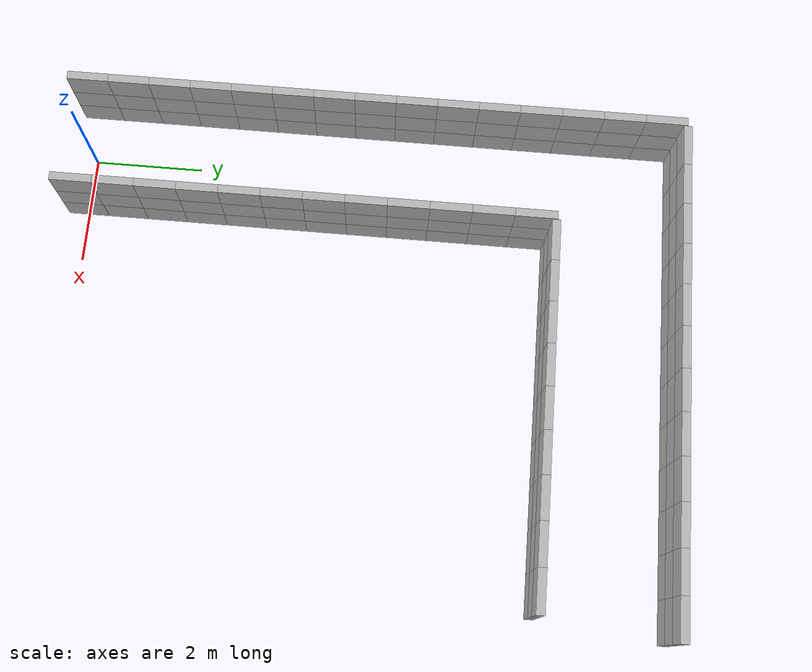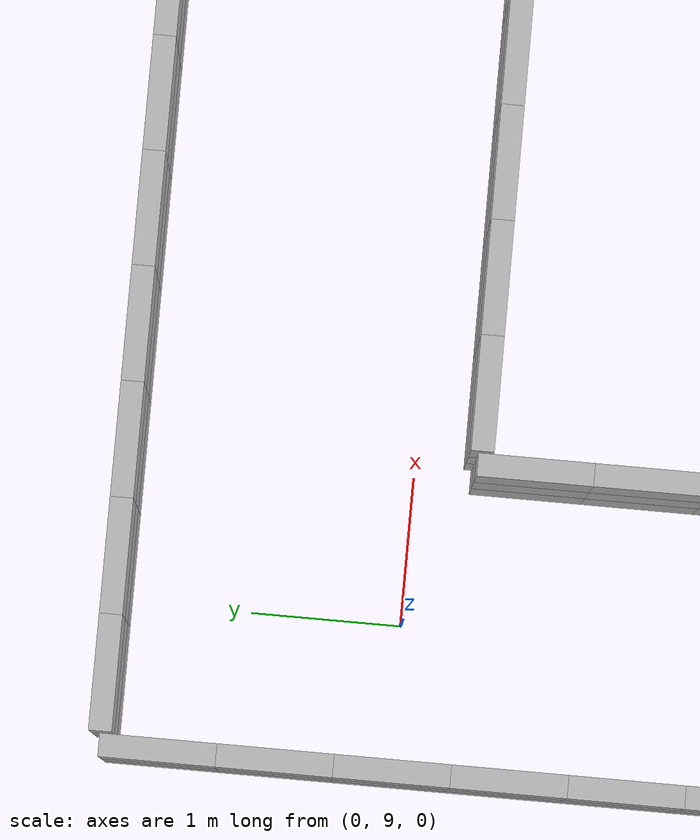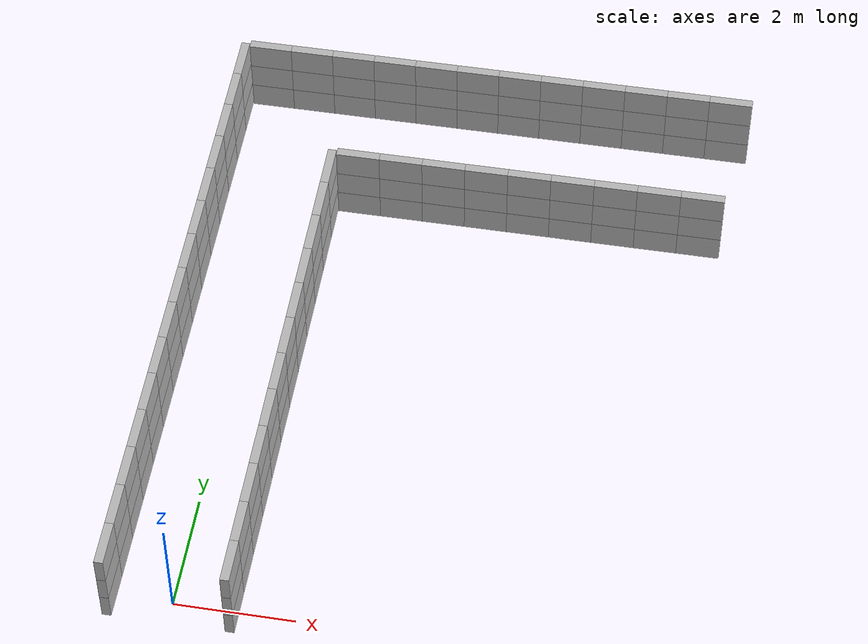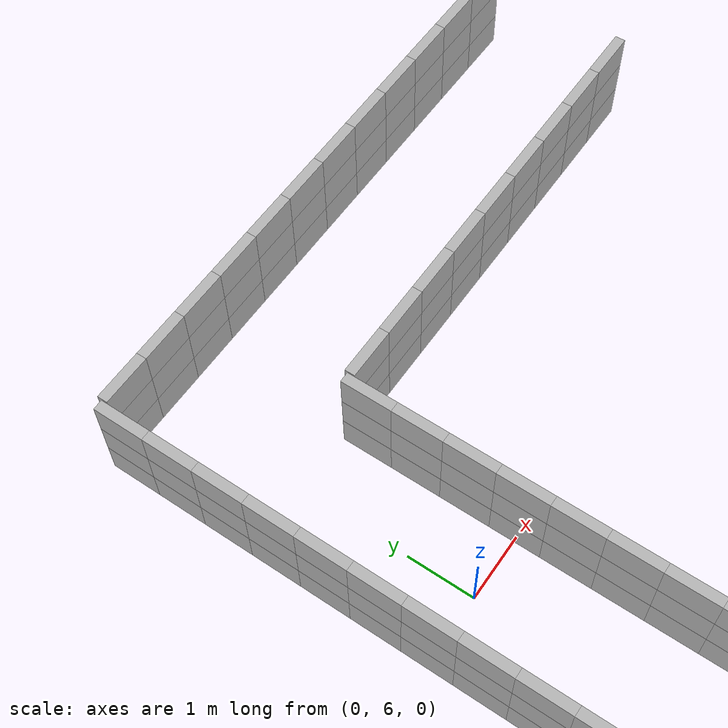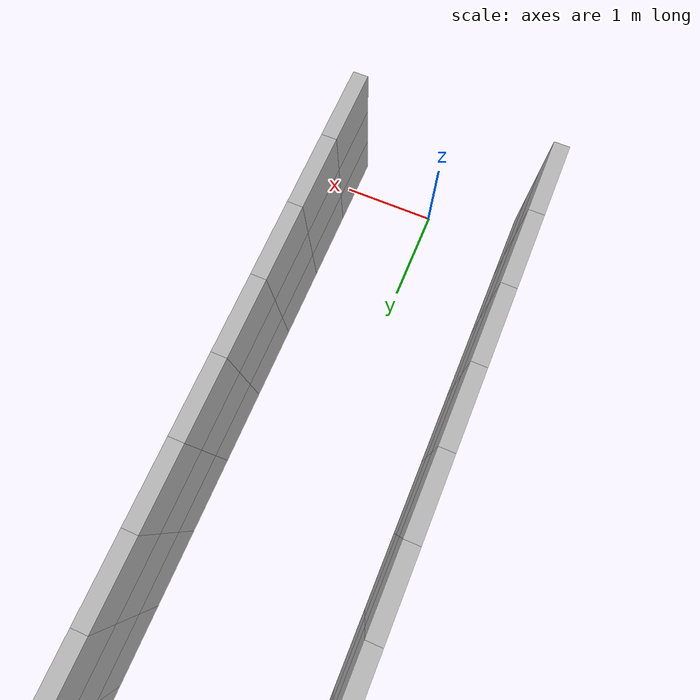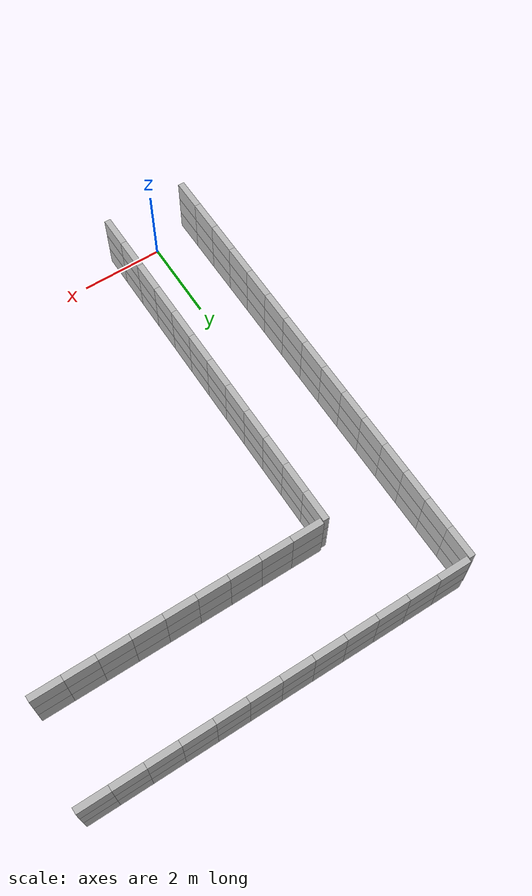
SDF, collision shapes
<sdf version="1.5">
 <model name="boxes_Lcorridor model">
  <static>true</static>
  <link name="link_0">
   <collision name="collision_0">
    <pose>-1 0 1.25 0 0 1.57079633</pose>
    <geometry><box><size>0.75 0.15 0.5</size></box></geometry>
   </collision>
   <visual name="visual_0">
    <pose>-1 0 1.25 0 0 1.57079633</pose>
    <geometry><mesh><uri>model://boxes_Lcorridor/meshes/blue_circle_border.dae</uri></mesh></geometry>
   </visual>
  </link>
  <link name="link_1">
   <collision name="collision_1">
    <pose>-1 0 0.75 0 0 1.57079633</pose>
    <geometry><box><size>0.75 0.15 0.5</size></box></geometry>
   </collision>
   <visual name="visual_1">
    <pose>-1 0 0.75 0 0 1.57079633</pose>
    <geometry><mesh><uri>model://boxes_Lcorridor/meshes/red_circle_border.dae</uri></mesh></geometry>
   </visual>
  </link>
  <link name="link_2">
   <collision name="collision_2">
    <pose>-1 0 0.25 0 0 1.57079633</pose>
    <geometry><box><size>0.75 0.15 0.5</size></box></geometry>
   </collision>
   <visual name="visual_2">
    <pose>-1 0 0.25 0 0 1.57079633</pose>
    <geometry><mesh><uri>model://boxes_Lcorridor/meshes/green_circle_border.dae</uri></mesh></geometry>
   </visual>
  </link>
  <link name="link_3">
   <collision name="collision_3">
    <pose>-1 0.75 0.25 0 0 1.57079633</pose>
    <geometry><box><size>0.75 0.15 0.5</size></box></geometry>
   </collision>
   <visual name="visual_3">
    <pose>-1 0.75 0.25 0 0 1.57079633</pose>
    <geometry><mesh><uri>model://boxes_Lcorridor/meshes/blue_circle_border.dae</uri></mesh></geometry>
   </visual>
  </link>
  <link name="link_4">
   <collision name="collision_4">
    <pose>-1 0.75 1.25 0 0 1.57079633</pose>
    <geometry><box><size>0.75 0.15 0.5</size></box></geometry>
   </collision>
   <visual name="visual_4">
    <pose>-1 0.75 1.25 0 0 1.57079633</pose>
    <geometry><mesh><uri>model://boxes_Lcorridor/meshes/red_circle_border.dae</uri></mesh></geometry>
   </visual>
  </link>
  <link name="link_5">
   <collision name="collision_5">
    <pose>-1 0.75 0.75 0 0 1.57079633</pose>
    <geometry><box><size>0.75 0.15 0.5</size></box></geometry>
   </collision>
   <visual name="visual_5">
    <pose>-1 0.75 0.75 0 0 1.57079633</pose>
    <geometry><mesh><uri>model://boxes_Lcorridor/meshes/green_circle_border.dae</uri></mesh></geometry>
   </visual>
  </link>
  <link name="link_6">
   <collision name="collision_6">
    <pose>-1 1.5 0.75 0 0 1.57079633</pose>
    <geometry><box><size>0.75 0.15 0.5</size></box></geometry>
   </collision>
   <visual name="visual_6">
    <pose>-1 1.5 0.75 0 0 1.57079633</pose>
    <geometry><mesh><uri>model://boxes_Lcorridor/meshes/blue_circle_border.dae</uri></mesh></geometry>
   </visual>
  </link>
  <link name="link_7">
   <collision name="collision_7">
    <pose>-1 1.5 0.25 0 0 1.57079633</pose>
    <geometry><box><size>0.75 0.15 0.5</size></box></geometry>
   </collision>
   <visual name="visual_7">
    <pose>-1 1.5 0.25 0 0 1.57079633</pose>
    <geometry><mesh><uri>model://boxes_Lcorridor/meshes/red_circle_border.dae</uri></mesh></geometry>
   </visual>
  </link>
  <link name="link_8">
   <collision name="collision_8">
    <pose>-1 1.5 1.25 0 0 1.57079633</pose>
    <geometry><box><size>0.75 0.15 0.5</size></box></geometry>
   </collision>
   <visual name="visual_8">
    <pose>-1 1.5 1.25 0 0 1.57079633</pose>
    <geometry><mesh><uri>model://boxes_Lcorridor/meshes/green_circle_border.dae</uri></mesh></geometry>
   </visual>
  </link>
  <link name="link_9">
   <collision name="collision_9">
    <pose>-1 2.25 1.25 0 0 1.57079633</pose>
    <geometry><box><size>0.75 0.15 0.5</size></box></geometry>
   </collision>
   <visual name="visual_9">
    <pose>-1 2.25 1.25 0 0 1.57079633</pose>
    <geometry><mesh><uri>model://boxes_Lcorridor/meshes/blue_circle_border.dae</uri></mesh></geometry>
   </visual>
  </link>
  <link name="link_10">
   <collision name="collision_10">
    <pose>-1 2.25 0.75 0 0 1.57079633</pose>
    <geometry><box><size>0.75 0.15 0.5</size></box></geometry>
   </collision>
   <visual name="visual_10">
    <pose>-1 2.25 0.75 0 0 1.57079633</pose>
    <geometry><mesh><uri>model://boxes_Lcorridor/meshes/red_circle_border.dae</uri></mesh></geometry>
   </visual>
  </link>
  <link name="link_11">
   <collision name="collision_11">
    <pose>-1 2.25 0.25 0 0 1.57079633</pose>
    <geometry><box><size>0.75 0.15 0.5</size></box></geometry>
   </collision>
   <visual name="visual_11">
    <pose>-1 2.25 0.25 0 0 1.57079633</pose>
    <geometry><mesh><uri>model://boxes_Lcorridor/meshes/green_circle_border.dae</uri></mesh></geometry>
   </visual>
  </link>
  <link name="link_12">
   <collision name="collision_12">
    <pose>-1 3 0.25 0 0 1.57079633</pose>
    <geometry><box><size>0.75 0.15 0.5</size></box></geometry>
   </collision>
   <visual name="visual_12">
    <pose>-1 3 0.25 0 0 1.57079633</pose>
    <geometry><mesh><uri>model://boxes_Lcorridor/meshes/blue_circle_border.dae</uri></mesh></geometry>
   </visual>
  </link>
  <link name="link_13">
   <collision name="collision_13">
    <pose>-1 3 1.25 0 0 1.57079633</pose>
    <geometry><box><size>0.75 0.15 0.5</size></box></geometry>
   </collision>
   <visual name="visual_13">
    <pose>-1 3 1.25 0 0 1.57079633</pose>
    <geometry><mesh><uri>model://boxes_Lcorridor/meshes/red_circle_border.dae</uri></mesh></geometry>
   </visual>
  </link>
  <link name="link_14">
   <collision name="collision_14">
    <pose>-1 3 0.75 0 0 1.57079633</pose>
    <geometry><box><size>0.75 0.15 0.5</size></box></geometry>
   </collision>
   <visual name="visual_14">
    <pose>-1 3 0.75 0 0 1.57079633</pose>
    <geometry><mesh><uri>model://boxes_Lcorridor/meshes/green_circle_border.dae</uri></mesh></geometry>
   </visual>
  </link>
  <link name="link_15">
   <collision name="collision_15">
    <pose>-1 3.75 0.75 0 0 1.57079633</pose>
    <geometry><box><size>0.75 0.15 0.5</size></box></geometry>
   </collision>
   <visual name="visual_15">
    <pose>-1 3.75 0.75 0 0 1.57079633</pose>
    <geometry><mesh><uri>model://boxes_Lcorridor/meshes/blue_circle_border.dae</uri></mesh></geometry>
   </visual>
  </link>
  <link name="link_16">
   <collision name="collision_16">
    <pose>-1 3.75 0.25 0 0 1.57079633</pose>
    <geometry><box><size>0.75 0.15 0.5</size></box></geometry>
   </collision>
   <visual name="visual_16">
    <pose>-1 3.75 0.25 0 0 1.57079633</pose>
    <geometry><mesh><uri>model://boxes_Lcorridor/meshes/red_circle_border.dae</uri></mesh></geometry>
   </visual>
  </link>
  <link name="link_17">
   <collision name="collision_17">
    <pose>-1 3.75 1.25 0 0 1.57079633</pose>
    <geometry><box><size>0.75 0.15 0.5</size></box></geometry>
   </collision>
   <visual name="visual_17">
    <pose>-1 3.75 1.25 0 0 1.57079633</pose>
    <geometry><mesh><uri>model://boxes_Lcorridor/meshes/green_circle_border.dae</uri></mesh></geometry>
   </visual>
  </link>
  <link name="link_18">
   <collision name="collision_18">
    <pose>-1 4.5 1.25 0 0 1.57079633</pose>
    <geometry><box><size>0.75 0.15 0.5</size></box></geometry>
   </collision>
   <visual name="visual_18">
    <pose>-1 4.5 1.25 0 0 1.57079633</pose>
    <geometry><mesh><uri>model://boxes_Lcorridor/meshes/blue_circle_border.dae</uri></mesh></geometry>
   </visual>
  </link>
  <link name="link_19">
   <collision name="collision_19">
    <pose>-1 4.5 0.75 0 0 1.57079633</pose>
    <geometry><box><size>0.75 0.15 0.5</size></box></geometry>
   </collision>
   <visual name="visual_19">
    <pose>-1 4.5 0.75 0 0 1.57079633</pose>
    <geometry><mesh><uri>model://boxes_Lcorridor/meshes/red_circle_border.dae</uri></mesh></geometry>
   </visual>
  </link>
  <link name="link_20">
   <collision name="collision_20">
    <pose>-1 4.5 0.25 0 0 1.57079633</pose>
    <geometry><box><size>0.75 0.15 0.5</size></box></geometry>
   </collision>
   <visual name="visual_20">
    <pose>-1 4.5 0.25 0 0 1.57079633</pose>
    <geometry><mesh><uri>model://boxes_Lcorridor/meshes/green_circle_border.dae</uri></mesh></geometry>
   </visual>
  </link>
  <link name="link_21">
   <collision name="collision_21">
    <pose>-1 5.25 0.25 0 0 1.57079633</pose>
    <geometry><box><size>0.75 0.15 0.5</size></box></geometry>
   </collision>
   <visual name="visual_21">
    <pose>-1 5.25 0.25 0 0 1.57079633</pose>
    <geometry><mesh><uri>model://boxes_Lcorridor/meshes/blue_circle_border.dae</uri></mesh></geometry>
   </visual>
  </link>
  <link name="link_22">
   <collision name="collision_22">
    <pose>-1 5.25 1.25 0 0 1.57079633</pose>
    <geometry><box><size>0.75 0.15 0.5</size></box></geometry>
   </collision>
   <visual name="visual_22">
    <pose>-1 5.25 1.25 0 0 1.57079633</pose>
    <geometry><mesh><uri>model://boxes_Lcorridor/meshes/red_circle_border.dae</uri></mesh></geometry>
   </visual>
  </link>
  <link name="link_23">
   <collision name="collision_23">
    <pose>-1 5.25 0.75 0 0 1.57079633</pose>
    <geometry><box><size>0.75 0.15 0.5</size></box></geometry>
   </collision>
   <visual name="visual_23">
    <pose>-1 5.25 0.75 0 0 1.57079633</pose>
    <geometry><mesh><uri>model://boxes_Lcorridor/meshes/green_circle_border.dae</uri></mesh></geometry>
   </visual>
  </link>
  <link name="link_24">
   <collision name="collision_24">
    <pose>-1 6 0.75 0 0 1.57079633</pose>
    <geometry><box><size>0.75 0.15 0.5</size></box></geometry>
   </collision>
   <visual name="visual_24">
    <pose>-1 6 0.75 0 0 1.57079633</pose>
    <geometry><mesh><uri>model://boxes_Lcorridor/meshes/blue_circle_border.dae</uri></mesh></geometry>
   </visual>
  </link>
  <link name="link_25">
   <collision name="collision_25">
    <pose>-1 6 0.25 0 0 1.57079633</pose>
    <geometry><box><size>0.75 0.15 0.5</size></box></geometry>
   </collision>
   <visual name="visual_25">
    <pose>-1 6 0.25 0 0 1.57079633</pose>
    <geometry><mesh><uri>model://boxes_Lcorridor/meshes/red_circle_border.dae</uri></mesh></geometry>
   </visual>
  </link>
  <link name="link_26">
   <collision name="collision_26">
    <pose>-1 6 1.25 0 0 1.57079633</pose>
    <geometry><box><size>0.75 0.15 0.5</size></box></geometry>
   </collision>
   <visual name="visual_26">
    <pose>-1 6 1.25 0 0 1.57079633</pose>
    <geometry><mesh><uri>model://boxes_Lcorridor/meshes/green_circle_border.dae</uri></mesh></geometry>
   </visual>
  </link>
  <link name="link_27">
   <collision name="collision_27">
    <pose>-1 6.75 1.25 0 0 1.57079633</pose>
    <geometry><box><size>0.75 0.15 0.5</size></box></geometry>
   </collision>
   <visual name="visual_27">
    <pose>-1 6.75 1.25 0 0 1.57079633</pose>
    <geometry><mesh><uri>model://boxes_Lcorridor/meshes/blue_circle_border.dae</uri></mesh></geometry>
   </visual>
  </link>
  <link name="link_28">
   <collision name="collision_28">
    <pose>-1 6.75 0.75 0 0 1.57079633</pose>
    <geometry><box><size>0.75 0.15 0.5</size></box></geometry>
   </collision>
   <visual name="visual_28">
    <pose>-1 6.75 0.75 0 0 1.57079633</pose>
    <geometry><mesh><uri>model://boxes_Lcorridor/meshes/red_circle_border.dae</uri></mesh></geometry>
   </visual>
  </link>
  <link name="link_29">
   <collision name="collision_29">
    <pose>-1 6.75 0.25 0 0 1.57079633</pose>
    <geometry><box><size>0.75 0.15 0.5</size></box></geometry>
   </collision>
   <visual name="visual_29">
    <pose>-1 6.75 0.25 0 0 1.57079633</pose>
    <geometry><mesh><uri>model://boxes_Lcorridor/meshes/green_circle_border.dae</uri></mesh></geometry>
   </visual>
  </link>
  <link name="link_30">
   <collision name="collision_30">
    <pose>-1 7.5 0.25 0 0 1.57079633</pose>
    <geometry><box><size>0.75 0.15 0.5</size></box></geometry>
   </collision>
   <visual name="visual_30">
    <pose>-1 7.5 0.25 0 0 1.57079633</pose>
    <geometry><mesh><uri>model://boxes_Lcorridor/meshes/blue_circle_border.dae</uri></mesh></geometry>
   </visual>
  </link>
  <link name="link_31">
   <collision name="collision_31">
    <pose>-1 7.5 1.25 0 0 1.57079633</pose>
    <geometry><box><size>0.75 0.15 0.5</size></box></geometry>
   </collision>
   <visual name="visual_31">
    <pose>-1 7.5 1.25 0 0 1.57079633</pose>
    <geometry><mesh><uri>model://boxes_Lcorridor/meshes/red_circle_border.dae</uri></mesh></geometry>
   </visual>
  </link>
  <link name="link_32">
   <collision name="collision_32">
    <pose>-1 7.5 0.75 0 0 1.57079633</pose>
    <geometry><box><size>0.75 0.15 0.5</size></box></geometry>
   </collision>
   <visual name="visual_32">
    <pose>-1 7.5 0.75 0 0 1.57079633</pose>
    <geometry><mesh><uri>model://boxes_Lcorridor/meshes/green_circle_border.dae</uri></mesh></geometry>
   </visual>
  </link>
  <link name="link_33">
   <collision name="collision_33">
    <pose>-1 8.25 0.75 0 0 1.57079633</pose>
    <geometry><box><size>0.75 0.15 0.5</size></box></geometry>
   </collision>
   <visual name="visual_33">
    <pose>-1 8.25 0.75 0 0 1.57079633</pose>
    <geometry><mesh><uri>model://boxes_Lcorridor/meshes/blue_circle_border.dae</uri></mesh></geometry>
   </visual>
  </link>
  <link name="link_34">
   <collision name="collision_34">
    <pose>-1 8.25 0.25 0 0 1.57079633</pose>
    <geometry><box><size>0.75 0.15 0.5</size></box></geometry>
   </collision>
   <visual name="visual_34">
    <pose>-1 8.25 0.25 0 0 1.57079633</pose>
    <geometry><mesh><uri>model://boxes_Lcorridor/meshes/red_circle_border.dae</uri></mesh></geometry>
   </visual>
  </link>
  <link name="link_35">
   <collision name="collision_35">
    <pose>-1 8.25 1.25 0 0 1.57079633</pose>
    <geometry><box><size>0.75 0.15 0.5</size></box></geometry>
   </collision>
   <visual name="visual_35">
    <pose>-1 8.25 1.25 0 0 1.57079633</pose>
    <geometry><mesh><uri>model://boxes_Lcorridor/meshes/green_circle_border.dae</uri></mesh></geometry>
   </visual>
  </link>
  <link name="link_36">
   <collision name="collision_36">
    <pose>-1 9 1.25 0 0 1.57079633</pose>
    <geometry><box><size>0.75 0.15 0.5</size></box></geometry>
   </collision>
   <visual name="visual_36">
    <pose>-1 9 1.25 0 0 1.57079633</pose>
    <geometry><mesh><uri>model://boxes_Lcorridor/meshes/blue_circle_border.dae</uri></mesh></geometry>
   </visual>
  </link>
  <link name="link_37">
   <collision name="collision_37">
    <pose>-1 9 0.75 0 0 1.57079633</pose>
    <geometry><box><size>0.75 0.15 0.5</size></box></geometry>
   </collision>
   <visual name="visual_37">
    <pose>-1 9 0.75 0 0 1.57079633</pose>
    <geometry><mesh><uri>model://boxes_Lcorridor/meshes/red_circle_border.dae</uri></mesh></geometry>
   </visual>
  </link>
  <link name="link_38">
   <collision name="collision_38">
    <pose>-1 9 0.25 0 0 1.57079633</pose>
    <geometry><box><size>0.75 0.15 0.5</size></box></geometry>
   </collision>
   <visual name="visual_38">
    <pose>-1 9 0.25 0 0 1.57079633</pose>
    <geometry><mesh><uri>model://boxes_Lcorridor/meshes/green_circle_border.dae</uri></mesh></geometry>
   </visual>
  </link>
  <link name="link_39">
   <collision name="collision_39">
    <pose>-1 9.75 0.25 0 0 1.57079633</pose>
    <geometry><box><size>0.75 0.15 0.5</size></box></geometry>
   </collision>
   <visual name="visual_39">
    <pose>-1 9.75 0.25 0 0 1.57079633</pose>
    <geometry><mesh><uri>model://boxes_Lcorridor/meshes/blue_circle_border.dae</uri></mesh></geometry>
   </visual>
  </link>
  <link name="link_40">
   <collision name="collision_40">
    <pose>-1 9.75 1.25 0 0 1.57079633</pose>
    <geometry><box><size>0.75 0.15 0.5</size></box></geometry>
   </collision>
   <visual name="visual_40">
    <pose>-1 9.75 1.25 0 0 1.57079633</pose>
    <geometry><mesh><uri>model://boxes_Lcorridor/meshes/red_circle_border.dae</uri></mesh></geometry>
   </visual>
  </link>
  <link name="link_41">
   <collision name="collision_41">
    <pose>-1 9.75 0.75 0 0 1.57079633</pose>
    <geometry><box><size>0.75 0.15 0.5</size></box></geometry>
   </collision>
   <visual name="visual_41">
    <pose>-1 9.75 0.75 0 0 1.57079633</pose>
    <geometry><mesh><uri>model://boxes_Lcorridor/meshes/green_circle_border.dae</uri></mesh></geometry>
   </visual>
  </link>
  <link name="link_42">
   <collision name="collision_42">
    <pose>-1 10.5 0.75 0 0 1.57079633</pose>
    <geometry><box><size>0.75 0.15 0.5</size></box></geometry>
   </collision>
   <visual name="visual_42">
    <pose>-1 10.5 0.75 0 0 1.57079633</pose>
    <geometry><mesh><uri>model://boxes_Lcorridor/meshes/blue_circle_border.dae</uri></mesh></geometry>
   </visual>
  </link>
  <link name="link_43">
   <collision name="collision_43">
    <pose>-1 10.5 0.25 0 0 1.57079633</pose>
    <geometry><box><size>0.75 0.15 0.5</size></box></geometry>
   </collision>
   <visual name="visual_43">
    <pose>-1 10.5 0.25 0 0 1.57079633</pose>
    <geometry><mesh><uri>model://boxes_Lcorridor/meshes/red_circle_border.dae</uri></mesh></geometry>
   </visual>
  </link>
  <link name="link_44">
   <collision name="collision_44">
    <pose>-1 10.5 1.25 0 0 1.57079633</pose>
    <geometry><box><size>0.75 0.15 0.5</size></box></geometry>
   </collision>
   <visual name="visual_44">
    <pose>-1 10.5 1.25 0 0 1.57079633</pose>
    <geometry><mesh><uri>model://boxes_Lcorridor/meshes/green_circle_border.dae</uri></mesh></geometry>
   </visual>
  </link>
  <link name="link_0_0">
   <collision name="collision_0_0">
    <pose>1 0 1.25 0 0 -1.57079633</pose>
    <geometry><box><size>0.75 0.15 0.5</size></box></geometry>
   </collision>
   <visual name="visual_0_0">
    <pose>1 0 1.25 0 0 -1.57079633</pose>
    <geometry><mesh><uri>model://boxes_Lcorridor/meshes/blue_circle_border.dae</uri></mesh></geometry>
   </visual>
  </link>
  <link name="link_1_0">
   <collision name="collision_1_0">
    <pose>1 0 0.75 0 0 -1.57079633</pose>
    <geometry><box><size>0.75 0.15 0.5</size></box></geometry>
   </collision>
   <visual name="visual_1_0">
    <pose>1 0 0.75 0 0 -1.57079633</pose>
    <geometry><mesh><uri>model://boxes_Lcorridor/meshes/red_circle_border.dae</uri></mesh></geometry>
   </visual>
  </link>
  <link name="link_2_0">
   <collision name="collision_2_0">
    <pose>1 0 0.25 0 0 -1.57079633</pose>
    <geometry><box><size>0.75 0.15 0.5</size></box></geometry>
   </collision>
   <visual name="visual_2_0">
    <pose>1 0 0.25 0 0 -1.57079633</pose>
    <geometry><mesh><uri>model://boxes_Lcorridor/meshes/green_circle_border.dae</uri></mesh></geometry>
   </visual>
  </link>
  <link name="link_3_0">
   <collision name="collision_3_0">
    <pose>1 0.75 0.25 0 0 -1.57079633</pose>
    <geometry><box><size>0.75 0.15 0.5</size></box></geometry>
   </collision>
   <visual name="visual_3_0">
    <pose>1 0.75 0.25 0 0 -1.57079633</pose>
    <geometry><mesh><uri>model://boxes_Lcorridor/meshes/blue_circle_border.dae</uri></mesh></geometry>
   </visual>
  </link>
  <link name="link_4_0">
   <collision name="collision_4_0">
    <pose>1 0.75 1.25 0 0 -1.57079633</pose>
    <geometry><box><size>0.75 0.15 0.5</size></box></geometry>
   </collision>
   <visual name="visual_4_0">
    <pose>1 0.75 1.25 0 0 -1.57079633</pose>
    <geometry><mesh><uri>model://boxes_Lcorridor/meshes/red_circle_border.dae</uri></mesh></geometry>
   </visual>
  </link>
  <link name="link_5_0">
   <collision name="collision_5_0">
    <pose>1 0.75 0.75 0 0 -1.57079633</pose>
    <geometry><box><size>0.75 0.15 0.5</size></box></geometry>
   </collision>
   <visual name="visual_5_0">
    <pose>1 0.75 0.75 0 0 -1.57079633</pose>
    <geometry><mesh><uri>model://boxes_Lcorridor/meshes/green_circle_border.dae</uri></mesh></geometry>
   </visual>
  </link>
  <link name="link_6_0">
   <collision name="collision_6_0">
    <pose>1 1.5 0.75 0 0 -1.57079633</pose>
    <geometry><box><size>0.75 0.15 0.5</size></box></geometry>
   </collision>
   <visual name="visual_6_0">
    <pose>1 1.5 0.75 0 0 -1.57079633</pose>
    <geometry><mesh><uri>model://boxes_Lcorridor/meshes/blue_circle_border.dae</uri></mesh></geometry>
   </visual>
  </link>
  <link name="link_7_0">
   <collision name="collision_7_0">
    <pose>1 1.5 0.25 0 0 -1.57079633</pose>
    <geometry><box><size>0.75 0.15 0.5</size></box></geometry>
   </collision>
   <visual name="visual_7_0">
    <pose>1 1.5 0.25 0 0 -1.57079633</pose>
    <geometry><mesh><uri>model://boxes_Lcorridor/meshes/red_circle_border.dae</uri></mesh></geometry>
   </visual>
  </link>
  <link name="link_8_0">
   <collision name="collision_8_0">
    <pose>1 1.5 1.25 0 0 -1.57079633</pose>
    <geometry><box><size>0.75 0.15 0.5</size></box></geometry>
   </collision>
   <visual name="visual_8_0">
    <pose>1 1.5 1.25 0 0 -1.57079633</pose>
    <geometry><mesh><uri>model://boxes_Lcorridor/meshes/green_circle_border.dae</uri></mesh></geometry>
   </visual>
  </link>
  <link name="link_9_0">
   <collision name="collision_9_0">
    <pose>1 2.25 1.25 0 0 -1.57079633</pose>
    <geometry><box><size>0.75 0.15 0.5</size></box></geometry>
   </collision>
   <visual name="visual_9_0">
    <pose>1 2.25 1.25 0 0 -1.57079633</pose>
    <geometry><mesh><uri>model://boxes_Lcorridor/meshes/blue_circle_border.dae</uri></mesh></geometry>
   </visual>
  </link>
  <link name="link_10_0">
   <collision name="collision_10_0">
    <pose>1 2.25 0.75 0 0 -1.57079633</pose>
    <geometry><box><size>0.75 0.15 0.5</size></box></geometry>
   </collision>
   <visual name="visual_10_0">
    <pose>1 2.25 0.75 0 0 -1.57079633</pose>
    <geometry><mesh><uri>model://boxes_Lcorridor/meshes/red_circle_border.dae</uri></mesh></geometry>
   </visual>
  </link>
  <link name="link_11_0">
   <collision name="collision_11_0">
    <pose>1 2.25 0.25 0 0 -1.57079633</pose>
    <geometry><box><size>0.75 0.15 0.5</size></box></geometry>
   </collision>
   <visual name="visual_11_0">
    <pose>1 2.25 0.25 0 0 -1.57079633</pose>
    <geometry><mesh><uri>model://boxes_Lcorridor/meshes/green_circle_border.dae</uri></mesh></geometry>
   </visual>
  </link>
  <link name="link_12_0">
   <collision name="collision_12_0">
    <pose>1 3 0.25 0 0 -1.57079633</pose>
    <geometry><box><size>0.75 0.15 0.5</size></box></geometry>
   </collision>
   <visual name="visual_12_0">
    <pose>1 3 0.25 0 0 -1.57079633</pose>
    <geometry><mesh><uri>model://boxes_Lcorridor/meshes/blue_circle_border.dae</uri></mesh></geometry>
   </visual>
  </link>
  <link name="link_13_0">
   <collision name="collision_13_0">
    <pose>1 3 1.25 0 0 -1.57079633</pose>
    <geometry><box><size>0.75 0.15 0.5</size></box></geometry>
   </collision>
   <visual name="visual_13_0">
    <pose>1 3 1.25 0 0 -1.57079633</pose>
    <geometry><mesh><uri>model://boxes_Lcorridor/meshes/red_circle_border.dae</uri></mesh></geometry>
   </visual>
  </link>
  <link name="link_14_0">
   <collision name="collision_14_0">
    <pose>1 3 0.75 0 0 -1.57079633</pose>
    <geometry><box><size>0.75 0.15 0.5</size></box></geometry>
   </collision>
   <visual name="visual_14_0">
    <pose>1 3 0.75 0 0 -1.57079633</pose>
    <geometry><mesh><uri>model://boxes_Lcorridor/meshes/green_circle_border.dae</uri></mesh></geometry>
   </visual>
  </link>
  <link name="link_15_0">
   <collision name="collision_15_0">
    <pose>1 3.75 0.75 0 0 -1.57079633</pose>
    <geometry><box><size>0.75 0.15 0.5</size></box></geometry>
   </collision>
   <visual name="visual_15_0">
    <pose>1 3.75 0.75 0 0 -1.57079633</pose>
    <geometry><mesh><uri>model://boxes_Lcorridor/meshes/blue_circle_border.dae</uri></mesh></geometry>
   </visual>
  </link>
  <link name="link_16_0">
   <collision name="collision_16_0">
    <pose>1 3.75 0.25 0 0 -1.57079633</pose>
    <geometry><box><size>0.75 0.15 0.5</size></box></geometry>
   </collision>
   <visual name="visual_16_0">
    <pose>1 3.75 0.25 0 0 -1.57079633</pose>
    <geometry><mesh><uri>model://boxes_Lcorridor/meshes/red_circle_border.dae</uri></mesh></geometry>
   </visual>
  </link>
  <link name="link_17_0">
   <collision name="collision_17_0">
    <pose>1 3.75 1.25 0 0 -1.57079633</pose>
    <geometry><box><size>0.75 0.15 0.5</size></box></geometry>
   </collision>
   <visual name="visual_17_0">
    <pose>1 3.75 1.25 0 0 -1.57079633</pose>
    <geometry><mesh><uri>model://boxes_Lcorridor/meshes/green_circle_border.dae</uri></mesh></geometry>
   </visual>
  </link>
  <link name="link_18_0">
   <collision name="collision_18_0">
    <pose>1 4.5 1.25 0 0 -1.57079633</pose>
    <geometry><box><size>0.75 0.15 0.5</size></box></geometry>
   </collision>
   <visual name="visual_18_0">
    <pose>1 4.5 1.25 0 0 -1.57079633</pose>
    <geometry><mesh><uri>model://boxes_Lcorridor/meshes/blue_circle_border.dae</uri></mesh></geometry>
   </visual>
  </link>
  <link name="link_19_0">
   <collision name="collision_19_0">
    <pose>1 4.5 0.75 0 0 -1.57079633</pose>
    <geometry><box><size>0.75 0.15 0.5</size></box></geometry>
   </collision>
   <visual name="visual_19_0">
    <pose>1 4.5 0.75 0 0 -1.57079633</pose>
    <geometry><mesh><uri>model://boxes_Lcorridor/meshes/red_circle_border.dae</uri></mesh></geometry>
   </visual>
  </link>
  <link name="link_20_0">
   <collision name="collision_20_0">
    <pose>1 4.5 0.25 0 0 -1.57079633</pose>
    <geometry><box><size>0.75 0.15 0.5</size></box></geometry>
   </collision>
   <visual name="visual_20_0">
    <pose>1 4.5 0.25 0 0 -1.57079633</pose>
    <geometry><mesh><uri>model://boxes_Lcorridor/meshes/green_circle_border.dae</uri></mesh></geometry>
   </visual>
  </link>
  <link name="link_21_0">
   <collision name="collision_21_0">
    <pose>1 5.25 0.25 0 0 -1.57079633</pose>
    <geometry><box><size>0.75 0.15 0.5</size></box></geometry>
   </collision>
   <visual name="visual_21_0">
    <pose>1 5.25 0.25 0 0 -1.57079633</pose>
    <geometry><mesh><uri>model://boxes_Lcorridor/meshes/blue_circle_border.dae</uri></mesh></geometry>
   </visual>
  </link>
  <link name="link_22_0">
   <collision name="collision_22_0">
    <pose>1 5.25 1.25 0 0 -1.57079633</pose>
    <geometry><box><size>0.75 0.15 0.5</size></box></geometry>
   </collision>
   <visual name="visual_22_0">
    <pose>1 5.25 1.25 0 0 -1.57079633</pose>
    <geometry><mesh><uri>model://boxes_Lcorridor/meshes/red_circle_border.dae</uri></mesh></geometry>
   </visual>
  </link>
  <link name="link_23_0">
   <collision name="collision_23_0">
    <pose>1 5.25 0.75 0 0 -1.57079633</pose>
    <geometry><box><size>0.75 0.15 0.5</size></box></geometry>
   </collision>
   <visual name="visual_23_0">
    <pose>1 5.25 0.75 0 0 -1.57079633</pose>
    <geometry><mesh><uri>model://boxes_Lcorridor/meshes/green_circle_border.dae</uri></mesh></geometry>
   </visual>
  </link>
  <link name="link_24_0">
   <collision name="collision_24_0">
    <pose>1 6 0.75 0 0 -1.57079633</pose>
    <geometry><box><size>0.75 0.15 0.5</size></box></geometry>
   </collision>
   <visual name="visual_24_0">
    <pose>1 6 0.75 0 0 -1.57079633</pose>
    <geometry><mesh><uri>model://boxes_Lcorridor/meshes/blue_circle_border.dae</uri></mesh></geometry>
   </visual>
  </link>
  <link name="link_25_0">
   <collision name="collision_25_0">
    <pose>1 6 0.25 0 0 -1.57079633</pose>
    <geometry><box><size>0.75 0.15 0.5</size></box></geometry>
   </collision>
   <visual name="visual_25_0">
    <pose>1 6 0.25 0 0 -1.57079633</pose>
    <geometry><mesh><uri>model://boxes_Lcorridor/meshes/red_circle_border.dae</uri></mesh></geometry>
   </visual>
  </link>
  <link name="link_26_0">
   <collision name="collision_26_0">
    <pose>1 6 1.25 0 0 -1.57079633</pose>
    <geometry><box><size>0.75 0.15 0.5</size></box></geometry>
   </collision>
   <visual name="visual_26_0">
    <pose>1 6 1.25 0 0 -1.57079633</pose>
    <geometry><mesh><uri>model://boxes_Lcorridor/meshes/green_circle_border.dae</uri></mesh></geometry>
   </visual>
  </link>
  <link name="link_27_0">
   <collision name="collision_27_0">
    <pose>1 6.75 1.25 0 0 -1.57079633</pose>
    <geometry><box><size>0.75 0.15 0.5</size></box></geometry>
   </collision>
   <visual name="visual_27_0">
    <pose>1 6.75 1.25 0 0 -1.57079633</pose>
    <geometry><mesh><uri>model://boxes_Lcorridor/meshes/blue_circle_border.dae</uri></mesh></geometry>
   </visual>
  </link>
  <link name="link_28_0">
   <collision name="collision_28_0">
    <pose>1 6.75 0.75 0 0 -1.57079633</pose>
    <geometry><box><size>0.75 0.15 0.5</size></box></geometry>
   </collision>
   <visual name="visual_28_0">
    <pose>1 6.75 0.75 0 0 -1.57079633</pose>
    <geometry><mesh><uri>model://boxes_Lcorridor/meshes/red_circle_border.dae</uri></mesh></geometry>
   </visual>
  </link>
  <link name="link_29_0">
   <collision name="collision_29_0">
    <pose>1 6.75 0.25 0 0 -1.57079633</pose>
    <geometry><box><size>0.75 0.15 0.5</size></box></geometry>
   </collision>
   <visual name="visual_29_0">
    <pose>1 6.75 0.25 0 0 -1.57079633</pose>
    <geometry><mesh><uri>model://boxes_Lcorridor/meshes/green_circle_border.dae</uri></mesh></geometry>
   </visual>
  </link>
  <link name="link_30_0">
   <collision name="collision_30_0">
    <pose>1 7.5 0.25 0 0 -1.57079633</pose>
    <geometry><box><size>0.75 0.15 0.5</size></box></geometry>
   </collision>
   <visual name="visual_30_0">
    <pose>1 7.5 0.25 0 0 -1.57079633</pose>
    <geometry><mesh><uri>model://boxes_Lcorridor/meshes/blue_circle_border.dae</uri></mesh></geometry>
   </visual>
  </link>
  <link name="link_31_0">
   <collision name="collision_31_0">
    <pose>1 7.5 1.25 0 0 -1.57079633</pose>
    <geometry><box><size>0.75 0.15 0.5</size></box></geometry>
   </collision>
   <visual name="visual_31_0">
    <pose>1 7.5 1.25 0 0 -1.57079633</pose>
    <geometry><mesh><uri>model://boxes_Lcorridor/meshes/red_circle_border.dae</uri></mesh></geometry>
   </visual>
  </link>
  <link name="link_32_0">
   <collision name="collision_32_0">
    <pose>1 7.5 0.75 0 0 -1.57079633</pose>
    <geometry><box><size>0.75 0.15 0.5</size></box></geometry>
   </collision>
   <visual name="visual_32_0">
    <pose>1 7.5 0.75 0 0 -1.57079633</pose>
    <geometry><mesh><uri>model://boxes_Lcorridor/meshes/green_circle_border.dae</uri></mesh></geometry>
   </visual>
  </link>
  <link name="link_33_0">
   <collision name="collision_33_0">
    <pose>1 8.25 0.75 0 0 -1.57079633</pose>
    <geometry><box><size>0.75 0.15 0.5</size></box></geometry>
   </collision>
   <visual name="visual_33_0">
    <pose>1 8.25 0.75 0 0 -1.57079633</pose>
    <geometry><mesh><uri>model://boxes_Lcorridor/meshes/blue_circle_border.dae</uri></mesh></geometry>
   </visual>
  </link>
  <link name="link_34_0">
   <collision name="collision_34_0">
    <pose>1 8.25 0.25 0 0 -1.57079633</pose>
    <geometry><box><size>0.75 0.15 0.5</size></box></geometry>
   </collision>
   <visual name="visual_34_0">
    <pose>1 8.25 0.25 0 0 -1.57079633</pose>
    <geometry><mesh><uri>model://boxes_Lcorridor/meshes/red_circle_border.dae</uri></mesh></geometry>
   </visual>
  </link>
  <link name="link_35_0">
   <collision name="collision_35_0">
    <pose>1 8.25 1.25 0 0 -1.57079633</pose>
    <geometry><box><size>0.75 0.15 0.5</size></box></geometry>
   </collision>
   <visual name="visual_35_0">
    <pose>1 8.25 1.25 0 0 -1.57079633</pose>
    <geometry><mesh><uri>model://boxes_Lcorridor/meshes/green_circle_border.dae</uri></mesh></geometry>
   </visual>
  </link>
  <link name="link_0_1">
   <collision name="collision_0_1">
    <pose>-0.5375 10.875 1.25 0 0 0</pose>
    <geometry><box><size>0.75 0.15 0.5</size></box></geometry>
   </collision>
   <visual name="visual_0_1">
    <pose>-0.5375 10.875 1.25 0 0 0</pose>
    <geometry><mesh><uri>model://boxes_Lcorridor/meshes/blue_circle_border.dae</uri></mesh></geometry>
   </visual>
  </link>
  <link name="link_1_1">
   <collision name="collision_1_1">
    <pose>-0.5375 10.875 0.75 0 0 0</pose>
    <geometry><box><size>0.75 0.15 0.5</size></box></geometry>
   </collision>
   <visual name="visual_1_1">
    <pose>-0.5375 10.875 0.75 0 0 0</pose>
    <geometry><mesh><uri>model://boxes_Lcorridor/meshes/red_circle_border.dae</uri></mesh></geometry>
   </visual>
  </link>
  <link name="link_2_1">
   <collision name="collision_2_1">
    <pose>-0.5375 10.875 0.25 0 0 0</pose>
    <geometry><box><size>0.75 0.15 0.5</size></box></geometry>
   </collision>
   <visual name="visual_2_1">
    <pose>-0.5375 10.875 0.25 0 0 0</pose>
    <geometry><mesh><uri>model://boxes_Lcorridor/meshes/green_circle_border.dae</uri></mesh></geometry>
   </visual>
  </link>
  <link name="link_3_1">
   <collision name="collision_3_1">
    <pose>0.2125 10.875 0.25 0 0 0</pose>
    <geometry><box><size>0.75 0.15 0.5</size></box></geometry>
   </collision>
   <visual name="visual_3_1">
    <pose>0.2125 10.875 0.25 0 0 0</pose>
    <geometry><mesh><uri>model://boxes_Lcorridor/meshes/blue_circle_border.dae</uri></mesh></geometry>
   </visual>
  </link>
  <link name="link_4_1">
   <collision name="collision_4_1">
    <pose>0.2125 10.875 1.25 0 0 0</pose>
    <geometry><box><size>0.75 0.15 0.5</size></box></geometry>
   </collision>
   <visual name="visual_4_1">
    <pose>0.2125 10.875 1.25 0 0 0</pose>
    <geometry><mesh><uri>model://boxes_Lcorridor/meshes/red_circle_border.dae</uri></mesh></geometry>
   </visual>
  </link>
  <link name="link_5_1">
   <collision name="collision_5_1">
    <pose>0.2125 10.875 0.75 0 0 0</pose>
    <geometry><box><size>0.75 0.15 0.5</size></box></geometry>
   </collision>
   <visual name="visual_5_1">
    <pose>0.2125 10.875 0.75 0 0 0</pose>
    <geometry><mesh><uri>model://boxes_Lcorridor/meshes/green_circle_border.dae</uri></mesh></geometry>
   </visual>
  </link>
  <link name="link_6_1">
   <collision name="collision_6_1">
    <pose>0.9625 10.875 0.75 0 0 0</pose>
    <geometry><box><size>0.75 0.15 0.5</size></box></geometry>
   </collision>
   <visual name="visual_6_1">
    <pose>0.9625 10.875 0.75 0 0 0</pose>
    <geometry><mesh><uri>model://boxes_Lcorridor/meshes/blue_circle_border.dae</uri></mesh></geometry>
   </visual>
  </link>
  <link name="link_7_1">
   <collision name="collision_7_1">
    <pose>0.9625 10.875 0.25 0 0 0</pose>
    <geometry><box><size>0.75 0.15 0.5</size></box></geometry>
   </collision>
   <visual name="visual_7_1">
    <pose>0.9625 10.875 0.25 0 0 0</pose>
    <geometry><mesh><uri>model://boxes_Lcorridor/meshes/red_circle_border.dae</uri></mesh></geometry>
   </visual>
  </link>
  <link name="link_8_1">
   <collision name="collision_8_1">
    <pose>0.9625 10.875 1.25 0 0 0</pose>
    <geometry><box><size>0.75 0.15 0.5</size></box></geometry>
   </collision>
   <visual name="visual_8_1">
    <pose>0.9625 10.875 1.25 0 0 0</pose>
    <geometry><mesh><uri>model://boxes_Lcorridor/meshes/green_circle_border.dae</uri></mesh></geometry>
   </visual>
  </link>
  <link name="link_9_1">
   <collision name="collision_9_1">
    <pose>1.7125 10.875 1.25 0 0 0</pose>
    <geometry><box><size>0.75 0.15 0.5</size></box></geometry>
   </collision>
   <visual name="visual_9_1">
    <pose>1.7125 10.875 1.25 0 0 0</pose>
    <geometry><mesh><uri>model://boxes_Lcorridor/meshes/blue_circle_border.dae</uri></mesh></geometry>
   </visual>
  </link>
  <link name="link_10_1">
   <collision name="collision_10_1">
    <pose>1.7125 10.875 0.75 0 0 0</pose>
    <geometry><box><size>0.75 0.15 0.5</size></box></geometry>
   </collision>
   <visual name="visual_10_1">
    <pose>1.7125 10.875 0.75 0 0 0</pose>
    <geometry><mesh><uri>model://boxes_Lcorridor/meshes/red_circle_border.dae</uri></mesh></geometry>
   </visual>
  </link>
  <link name="link_11_1">
   <collision name="collision_11_1">
    <pose>1.7125 10.875 0.25 0 0 0</pose>
    <geometry><box><size>0.75 0.15 0.5</size></box></geometry>
   </collision>
   <visual name="visual_11_1">
    <pose>1.7125 10.875 0.25 0 0 0</pose>
    <geometry><mesh><uri>model://boxes_Lcorridor/meshes/green_circle_border.dae</uri></mesh></geometry>
   </visual>
  </link>
  <link name="link_12_1">
   <collision name="collision_12_1">
    <pose>2.4625 10.875 0.25 0 0 0</pose>
    <geometry><box><size>0.75 0.15 0.5</size></box></geometry>
   </collision>
   <visual name="visual_12_1">
    <pose>2.4625 10.875 0.25 0 0 0</pose>
    <geometry><mesh><uri>model://boxes_Lcorridor/meshes/blue_circle_border.dae</uri></mesh></geometry>
   </visual>
  </link>
  <link name="link_13_1">
   <collision name="collision_13_1">
    <pose>2.4625 10.875 1.25 0 0 0</pose>
    <geometry><box><size>0.75 0.15 0.5</size></box></geometry>
   </collision>
   <visual name="visual_13_1">
    <pose>2.4625 10.875 1.25 0 0 0</pose>
    <geometry><mesh><uri>model://boxes_Lcorridor/meshes/red_circle_border.dae</uri></mesh></geometry>
   </visual>
  </link>
  <link name="link_14_1">
   <collision name="collision_14_1">
    <pose>2.4625 10.875 0.75 0 0 0</pose>
    <geometry><box><size>0.75 0.15 0.5</size></box></geometry>
   </collision>
   <visual name="visual_14_1">
    <pose>2.4625 10.875 0.75 0 0 0</pose>
    <geometry><mesh><uri>model://boxes_Lcorridor/meshes/green_circle_border.dae</uri></mesh></geometry>
   </visual>
  </link>
  <link name="link_15_1">
   <collision name="collision_15_1">
    <pose>3.2125 10.875 0.75 0 0 0</pose>
    <geometry><box><size>0.75 0.15 0.5</size></box></geometry>
   </collision>
   <visual name="visual_15_1">
    <pose>3.2125 10.875 0.75 0 0 0</pose>
    <geometry><mesh><uri>model://boxes_Lcorridor/meshes/blue_circle_border.dae</uri></mesh></geometry>
   </visual>
  </link>
  <link name="link_16_1">
   <collision name="collision_16_1">
    <pose>3.2125 10.875 0.25 0 0 0</pose>
    <geometry><box><size>0.75 0.15 0.5</size></box></geometry>
   </collision>
   <visual name="visual_16_1">
    <pose>3.2125 10.875 0.25 0 0 0</pose>
    <geometry><mesh><uri>model://boxes_Lcorridor/meshes/red_circle_border.dae</uri></mesh></geometry>
   </visual>
  </link>
  <link name="link_17_1">
   <collision name="collision_17_1">
    <pose>3.2125 10.875 1.25 0 0 0</pose>
    <geometry><box><size>0.75 0.15 0.5</size></box></geometry>
   </collision>
   <visual name="visual_17_1">
    <pose>3.2125 10.875 1.25 0 0 0</pose>
    <geometry><mesh><uri>model://boxes_Lcorridor/meshes/green_circle_border.dae</uri></mesh></geometry>
   </visual>
  </link>
  <link name="link_18_1">
   <collision name="collision_18_1">
    <pose>3.9625 10.875 1.25 0 0 0</pose>
    <geometry><box><size>0.75 0.15 0.5</size></box></geometry>
   </collision>
   <visual name="visual_18_1">
    <pose>3.9625 10.875 1.25 0 0 0</pose>
    <geometry><mesh><uri>model://boxes_Lcorridor/meshes/blue_circle_border.dae</uri></mesh></geometry>
   </visual>
  </link>
  <link name="link_19_1">
   <collision name="collision_19_1">
    <pose>3.9625 10.875 0.75 0 0 0</pose>
    <geometry><box><size>0.75 0.15 0.5</size></box></geometry>
   </collision>
   <visual name="visual_19_1">
    <pose>3.9625 10.875 0.75 0 0 0</pose>
    <geometry><mesh><uri>model://boxes_Lcorridor/meshes/red_circle_border.dae</uri></mesh></geometry>
   </visual>
  </link>
  <link name="link_20_1">
   <collision name="collision_20_1">
    <pose>3.9625 10.875 0.25 0 0 0</pose>
    <geometry><box><size>0.75 0.15 0.5</size></box></geometry>
   </collision>
   <visual name="visual_20_1">
    <pose>3.9625 10.875 0.25 0 0 0</pose>
    <geometry><mesh><uri>model://boxes_Lcorridor/meshes/green_circle_border.dae</uri></mesh></geometry>
   </visual>
  </link>
  <link name="link_21_1">
   <collision name="collision_21_1">
    <pose>4.7125 10.875 0.25 0 0 0</pose>
    <geometry><box><size>0.75 0.15 0.5</size></box></geometry>
   </collision>
   <visual name="visual_21_1">
    <pose>4.7125 10.875 0.25 0 0 0</pose>
    <geometry><mesh><uri>model://boxes_Lcorridor/meshes/blue_circle_border.dae</uri></mesh></geometry>
   </visual>
  </link>
  <link name="link_22_1">
   <collision name="collision_22_1">
    <pose>4.7125 10.875 1.25 0 0 0</pose>
    <geometry><box><size>0.75 0.15 0.5</size></box></geometry>
   </collision>
   <visual name="visual_22_1">
    <pose>4.7125 10.875 1.25 0 0 0</pose>
    <geometry><mesh><uri>model://boxes_Lcorridor/meshes/red_circle_border.dae</uri></mesh></geometry>
   </visual>
  </link>
  <link name="link_23_1">
   <collision name="collision_23_1">
    <pose>4.7125 10.875 0.75 0 0 0</pose>
    <geometry><box><size>0.75 0.15 0.5</size></box></geometry>
   </collision>
   <visual name="visual_23_1">
    <pose>4.7125 10.875 0.75 0 0 0</pose>
    <geometry><mesh><uri>model://boxes_Lcorridor/meshes/green_circle_border.dae</uri></mesh></geometry>
   </visual>
  </link>
  <link name="link_24_1">
   <collision name="collision_24_1">
    <pose>5.4625 10.875 0.75 0 0 0</pose>
    <geometry><box><size>0.75 0.15 0.5</size></box></geometry>
   </collision>
   <visual name="visual_24_1">
    <pose>5.4625 10.875 0.75 0 0 0</pose>
    <geometry><mesh><uri>model://boxes_Lcorridor/meshes/blue_circle_border.dae</uri></mesh></geometry>
   </visual>
  </link>
  <link name="link_25_1">
   <collision name="collision_25_1">
    <pose>5.4625 10.875 0.25 0 0 0</pose>
    <geometry><box><size>0.75 0.15 0.5</size></box></geometry>
   </collision>
   <visual name="visual_25_1">
    <pose>5.4625 10.875 0.25 0 0 0</pose>
    <geometry><mesh><uri>model://boxes_Lcorridor/meshes/red_circle_border.dae</uri></mesh></geometry>
   </visual>
  </link>
  <link name="link_26_1">
   <collision name="collision_26_1">
    <pose>5.4625 10.875 1.25 0 0 0</pose>
    <geometry><box><size>0.75 0.15 0.5</size></box></geometry>
   </collision>
   <visual name="visual_26_1">
    <pose>5.4625 10.875 1.25 0 0 0</pose>
    <geometry><mesh><uri>model://boxes_Lcorridor/meshes/green_circle_border.dae</uri></mesh></geometry>
   </visual>
  </link>
  <link name="link_27_1">
   <collision name="collision_27_1">
    <pose>6.2125 10.875 1.25 0 0 0</pose>
    <geometry><box><size>0.75 0.15 0.5</size></box></geometry>
   </collision>
   <visual name="visual_27_1">
    <pose>6.2125 10.875 1.25 0 0 0</pose>
    <geometry><mesh><uri>model://boxes_Lcorridor/meshes/blue_circle_border.dae</uri></mesh></geometry>
   </visual>
  </link>
  <link name="link_28_1">
   <collision name="collision_28_1">
    <pose>6.2125 10.875 0.75 0 0 0</pose>
    <geometry><box><size>0.75 0.15 0.5</size></box></geometry>
   </collision>
   <visual name="visual_28_1">
    <pose>6.2125 10.875 0.75 0 0 0</pose>
    <geometry><mesh><uri>model://boxes_Lcorridor/meshes/red_circle_border.dae</uri></mesh></geometry>
   </visual>
  </link>
  <link name="link_29_1">
   <collision name="collision_29_1">
    <pose>6.2125 10.875 0.25 0 0 0</pose>
    <geometry><box><size>0.75 0.15 0.5</size></box></geometry>
   </collision>
   <visual name="visual_26_1">
    <pose>6.2125 10.875 0.25 0 0 0</pose>
    <geometry><mesh><uri>model://boxes_Lcorridor/meshes/green_circle_border.dae</uri></mesh></geometry>
   </visual>
  </link>
  <link name="link_30_1">
   <collision name="collision_30_1">
    <pose>6.9625 10.875 0.25 0 0 0</pose>
    <geometry><box><size>0.75 0.15 0.5</size></box></geometry>
   </collision>
   <visual name="visual_30_1">
    <pose>6.9625 10.875 0.25 0 0 0</pose>
    <geometry><mesh><uri>model://boxes_Lcorridor/meshes/blue_circle_border.dae</uri></mesh></geometry>
   </visual>
  </link>
  <link name="link_31_1">
   <collision name="collision_31_1">
    <pose>6.9625 10.875 1.25 0 0 0</pose>
    <geometry><box><size>0.75 0.15 0.5</size></box></geometry>
   </collision>
   <visual name="visual_31_1">
    <pose>6.9625 10.875 1.25 0 0 0</pose>
    <geometry><mesh><uri>model://boxes_Lcorridor/meshes/red_circle_border.dae</uri></mesh></geometry>
   </visual>
  </link>
  <link name="link_32_1">
   <collision name="collision_32_1">
    <pose>6.9625 10.875 0.75 0 0 0</pose>
    <geometry><box><size>0.75 0.15 0.5</size></box></geometry>
   </collision>
   <visual name="visual_32_1">
    <pose>6.9625 10.875 0.75 0 0 0</pose>
    <geometry><mesh><uri>model://boxes_Lcorridor/meshes/green_circle_border.dae</uri></mesh></geometry>
   </visual>
  </link>
  <link name="link_33_1">
   <collision name="collision_33_1">
    <pose>7.7125 10.875 0.75 0 0 0</pose>
    <geometry><box><size>0.75 0.15 0.5</size></box></geometry>
   </collision>
   <visual name="visual_33_1">
    <pose>7.7125 10.875 0.75 0 0 0</pose>
    <geometry><mesh><uri>model://boxes_Lcorridor/meshes/blue_circle_border.dae</uri></mesh></geometry>
   </visual>
  </link>
  <link name="link_34_1">
   <collision name="collision_34_1">
    <pose>7.7125 10.875 0.25 0 0 0</pose>
    <geometry><box><size>0.75 0.15 0.5</size></box></geometry>
   </collision>
   <visual name="visual_34_1">
    <pose>7.7125 10.875 0.25 0 0 0</pose>
    <geometry><mesh><uri>model://boxes_Lcorridor/meshes/red_circle_border.dae</uri></mesh></geometry>
   </visual>
  </link>
  <link name="link_35_1">
   <collision name="collision_35_1">
    <pose>7.7125 10.875 1.25 0 0 0</pose>
    <geometry><box><size>0.75 0.15 0.5</size></box></geometry>
   </collision>
   <visual name="visual_35_1">
    <pose>7.7125 10.875 1.25 0 0 0</pose>
    <geometry><mesh><uri>model://boxes_Lcorridor/meshes/green_circle_border.dae</uri></mesh></geometry>
   </visual>
  </link>
  <link name="link_0_2">
   <collision name="collision_0_2">
    <pose>1.4625 8.6 1.25 0 0 3.14159265359</pose>
    <geometry><box><size>0.75 0.15 0.5</size></box></geometry>
   </collision>
   <visual name="visual_0_2">
    <pose>1.4625 8.6 1.25 0 0 3.14159265359</pose>
    <geometry><mesh><uri>model://boxes_Lcorridor/meshes/blue_circle_border.dae</uri></mesh></geometry>
   </visual>
  </link>
  <link name="link_1_2">
   <collision name="collision_1_2">
    <pose>1.4625 8.6 0.75 0 0 3.14159265359</pose>
    <geometry><box><size>0.75 0.15 0.5</size></box></geometry>
   </collision>
   <visual name="visual_1_2">
    <pose>1.4625 8.6 0.75 0 0 3.14159265359</pose>
    <geometry><mesh><uri>model://boxes_Lcorridor/meshes/red_circle_border.dae</uri></mesh></geometry>
   </visual>
  </link>
  <link name="link_2_2">
   <collision name="collision_2_2">
    <pose>1.4625 8.6 0.25 0 0 3.14159265359</pose>
    <geometry><box><size>0.75 0.15 0.5</size></box></geometry>
   </collision>
   <visual name="visual_2_2">
    <pose>1.4625 8.6 0.25 0 0 3.14159265359</pose>
    <geometry><mesh><uri>model://boxes_Lcorridor/meshes/green_circle_border.dae</uri></mesh></geometry>
   </visual>
  </link>
  <link name="link_3_2">
   <collision name="collision_3_2">
    <pose>2.2125 8.6 0.25 0 0 3.14159265359</pose>
    <geometry><box><size>0.75 0.15 0.5</size></box></geometry>
   </collision>
   <visual name="visual_3_2">
    <pose>2.2125 8.6 0.25 0 0 3.14159265359</pose>
    <geometry><mesh><uri>model://boxes_Lcorridor/meshes/blue_circle_border.dae</uri></mesh></geometry>
   </visual>
  </link>
  <link name="link_4_2">
   <collision name="collision_4_2">
    <pose>2.2125 8.6 1.25 0 0 3.14159265359</pose>
    <geometry><box><size>0.75 0.15 0.5</size></box></geometry>
   </collision>
   <visual name="visual_4_2">
    <pose>2.2125 8.6 1.25 0 0 3.14159265359</pose>
    <geometry><mesh><uri>model://boxes_Lcorridor/meshes/red_circle_border.dae</uri></mesh></geometry>
   </visual>
  </link>
  <link name="link_5_2">
   <collision name="collision_5_2">
    <pose>2.2125 8.6 0.75 0 0 3.14159265359</pose>
    <geometry><box><size>0.75 0.15 0.5</size></box></geometry>
   </collision>
   <visual name="visual_5_2">
    <pose>2.2125 8.6 0.75 0 0 3.14159265359</pose>
    <geometry><mesh><uri>model://boxes_Lcorridor/meshes/green_circle_border.dae</uri></mesh></geometry>
   </visual>
  </link>
  <link name="link_6_2">
   <collision name="collision_6_2">
    <pose>2.9625 8.6 0.75 0 0 3.14159265359</pose>
    <geometry><box><size>0.75 0.15 0.5</size></box></geometry>
   </collision>
   <visual name="visual_6_2">
    <pose>2.9625 8.6 0.75 0 0 3.14159265359</pose>
    <geometry><mesh><uri>model://boxes_Lcorridor/meshes/blue_circle_border.dae</uri></mesh></geometry>
   </visual>
  </link>
  <link name="link_7_2">
   <collision name="collision_7_2">
    <pose>2.9625 8.6 0.25 0 0 3.14159265359</pose>
    <geometry><box><size>0.75 0.15 0.5</size></box></geometry>
   </collision>
   <visual name="visual_7_2">
    <pose>2.9625 8.6 0.25 0 0 3.14159265359</pose>
    <geometry><mesh><uri>model://boxes_Lcorridor/meshes/red_circle_border.dae</uri></mesh></geometry>
   </visual>
  </link>
  <link name="link_8_2">
   <collision name="collision_8_2">
    <pose>2.9625 8.6 1.25 0 0 3.14159265359</pose>
    <geometry><box><size>0.75 0.15 0.5</size></box></geometry>
   </collision>
   <visual name="visual_8_2">
    <pose>2.9625 8.6 1.25 0 0 3.14159265359</pose>
    <geometry><mesh><uri>model://boxes_Lcorridor/meshes/green_circle_border.dae</uri></mesh></geometry>
   </visual>
  </link>
  <link name="link_9_2">
   <collision name="collision_9_2">
    <pose>3.7125 8.6 1.25 0 0 3.14159265359</pose>
    <geometry><box><size>0.75 0.15 0.5</size></box></geometry>
   </collision>
   <visual name="visual_9_2">
    <pose>3.7125 8.6 1.25 0 0 3.14159265359</pose>
    <geometry><mesh><uri>model://boxes_Lcorridor/meshes/blue_circle_border.dae</uri></mesh></geometry>
   </visual>
  </link>
  <link name="link_10_2">
   <collision name="collision_10_2">
    <pose>3.7125 8.6 0.75 0 0 3.14159265359</pose>
    <geometry><box><size>0.75 0.15 0.5</size></box></geometry>
   </collision>
   <visual name="visual_10_2">
    <pose>3.7125 8.6 0.75 0 0 3.14159265359</pose>
    <geometry><mesh><uri>model://boxes_Lcorridor/meshes/red_circle_border.dae</uri></mesh></geometry>
   </visual>
  </link>
  <link name="link_11_2">
   <collision name="collision_11_2">
    <pose>3.7125 8.6 0.25 0 0 3.14159265359</pose>
    <geometry><box><size>0.75 0.15 0.5</size></box></geometry>
   </collision>
   <visual name="visual_11_2">
    <pose>3.7125 8.6 0.25 0 0 3.14159265359</pose>
    <geometry><mesh><uri>model://boxes_Lcorridor/meshes/green_circle_border.dae</uri></mesh></geometry>
   </visual>
  </link>
  <link name="link_12_2">
   <collision name="collision_12_2">
    <pose>4.4625 8.6 0.25 0 0 3.14159265359</pose>
    <geometry><box><size>0.75 0.15 0.5</size></box></geometry>
   </collision>
   <visual name="visual_12_2">
    <pose>4.4625 8.6 0.25 0 0 3.14159265359</pose>
    <geometry><mesh><uri>model://boxes_Lcorridor/meshes/blue_circle_border.dae</uri></mesh></geometry>
   </visual>
  </link>
  <link name="link_13_2">
   <collision name="collision_13_2">
    <pose>4.4625 8.6 1.25 0 0 3.14159265359</pose>
    <geometry><box><size>0.75 0.15 0.5</size></box></geometry>
   </collision>
   <visual name="visual_13_2">
    <pose>4.4625 8.6 1.25 0 0 3.14159265359</pose>
    <geometry><mesh><uri>model://boxes_Lcorridor/meshes/red_circle_border.dae</uri></mesh></geometry>
   </visual>
  </link>
  <link name="link_14_2">
   <collision name="collision_14_2">
    <pose>4.4625 8.6 0.75 0 0 3.14159265359</pose>
    <geometry><box><size>0.75 0.15 0.5</size></box></geometry>
   </collision>
   <visual name="visual_14_2">
    <pose>4.4625 8.6 0.75 0 0 3.14159265359</pose>
    <geometry><mesh><uri>model://boxes_Lcorridor/meshes/green_circle_border.dae</uri></mesh></geometry>
   </visual>
  </link>
  <link name="link_15_2">
   <collision name="collision_15_2">
    <pose>5.2125 8.6 0.75 0 0 3.14159265359</pose>
    <geometry><box><size>0.75 0.15 0.5</size></box></geometry>
   </collision>
   <visual name="visual_15_2">
    <pose>5.2125 8.6 0.75 0 0 3.14159265359</pose>
    <geometry><mesh><uri>model://boxes_Lcorridor/meshes/blue_circle_border.dae</uri></mesh></geometry>
   </visual>
  </link>
  <link name="link_16_2">
   <collision name="collision_16_2">
    <pose>5.2125 8.6 0.25 0 0 3.14159265359</pose>
    <geometry><box><size>0.75 0.15 0.5</size></box></geometry>
   </collision>
   <visual name="visual_16_2">
    <pose>5.2125 8.6 0.25 0 0 3.14159265359</pose>
    <geometry><mesh><uri>model://boxes_Lcorridor/meshes/red_circle_border.dae</uri></mesh></geometry>
   </visual>
  </link>
  <link name="link_17_2">
   <collision name="collision_17_2">
    <pose>5.2125 8.6 1.25 0 0 3.14159265359</pose>
    <geometry><box><size>0.75 0.15 0.5</size></box></geometry>
   </collision>
   <visual name="visual_17_2">
    <pose>5.2125 8.6 1.25 0 0 3.14159265359</pose>
    <geometry><mesh><uri>model://boxes_Lcorridor/meshes/green_circle_border.dae</uri></mesh></geometry>
   </visual>
  </link>
  <link name="link_18_2">
   <collision name="collision_18_2">
    <pose>5.9625 8.6 1.25 0 0 3.14159265359</pose>
    <geometry><box><size>0.75 0.15 0.5</size></box></geometry>
   </collision>
   <visual name="visual_18_2">
    <pose>5.9625 8.6 1.25 0 0 3.14159265359</pose>
    <geometry><mesh><uri>model://boxes_Lcorridor/meshes/blue_circle_border.dae</uri></mesh></geometry>
   </visual>
  </link>
  <link name="link_19_2">
   <collision name="collision_19_2">
    <pose>5.9625 8.6 0.75 0 0 3.14159265359</pose>
    <geometry><box><size>0.75 0.15 0.5</size></box></geometry>
   </collision>
   <visual name="visual_19_2">
    <pose>5.9625 8.6 0.75 0 0 3.14159265359</pose>
    <geometry><mesh><uri>model://boxes_Lcorridor/meshes/red_circle_border.dae</uri></mesh></geometry>
   </visual>
  </link>
  <link name="link_20_2">
   <collision name="collision_20_2">
    <pose>5.9625 8.6 0.25 0 0 3.14159265359</pose>
    <geometry><box><size>0.75 0.15 0.5</size></box></geometry>
   </collision>
   <visual name="visual_20_2">
    <pose>5.9625 8.6 0.25 0 0 3.14159265359</pose>
    <geometry><mesh><uri>model://boxes_Lcorridor/meshes/green_circle_border.dae</uri></mesh></geometry>
   </visual>
  </link>
  <link name="link_21_2">
   <collision name="collision_21_2">
    <pose>6.7125 8.6 0.25 0 0 3.14159265359</pose>
    <geometry><box><size>0.75 0.15 0.5</size></box></geometry>
   </collision>
   <visual name="visual_21_2">
    <pose>6.7125 8.6 0.25 0 0 3.14159265359</pose>
    <geometry><mesh><uri>model://boxes_Lcorridor/meshes/blue_circle_border.dae</uri></mesh></geometry>
   </visual>
  </link>
  <link name="link_22_2">
   <collision name="collision_22_2">
    <pose>6.7125 8.6 1.25 0 0 3.14159265359</pose>
    <geometry><box><size>0.75 0.15 0.5</size></box></geometry>
   </collision>
   <visual name="visual_22_2">
    <pose>6.7125 8.6 1.25 0 0 3.14159265359</pose>
    <geometry><mesh><uri>model://boxes_Lcorridor/meshes/red_circle_border.dae</uri></mesh></geometry>
   </visual>
  </link>
  <link name="link_23_2">
   <collision name="collision_23_2">
    <pose>6.7125 8.6 0.75 0 0 3.14159265359</pose>
    <geometry><box><size>0.75 0.15 0.5</size></box></geometry>
   </collision>
   <visual name="visual_23_2">
    <pose>6.7125 8.6 0.75 0 0 3.14159265359</pose>
    <geometry><mesh><uri>model://boxes_Lcorridor/meshes/green_circle_border.dae</uri></mesh></geometry>
   </visual>
  </link>
  <link name="link_24_2">
   <collision name="collision_24_2">
    <pose>7.4625 8.6 0.75 0 0 3.14159265359</pose>
    <geometry><box><size>0.75 0.15 0.5</size></box></geometry>
   </collision>
   <visual name="visual_24_2">
    <pose>7.4625 8.6 0.75 0 0 3.14159265359</pose>
    <geometry><mesh><uri>model://boxes_Lcorridor/meshes/blue_circle_border.dae</uri></mesh></geometry>
   </visual>
  </link>
  <link name="link_25_2">
   <collision name="collision_25_2">
    <pose>7.4625 8.6 0.25 0 0 3.14159265359</pose>
    <geometry><box><size>0.75 0.15 0.5</size></box></geometry>
   </collision>
   <visual name="visual_25_2">
    <pose>7.4625 8.6 0.25 0 0 3.14159265359</pose>
    <geometry><mesh><uri>model://boxes_Lcorridor/meshes/red_circle_border.dae</uri></mesh></geometry>
   </visual>
  </link>
  <link name="link_26_2">
   <collision name="collision_26_2">
    <pose>7.4625 8.6 1.25 0 0 3.14159265359</pose>
    <geometry><box><size>0.75 0.15 0.5</size></box></geometry>
   </collision>
   <visual name="visual_26_2">
    <pose>7.4625 8.6 1.25 0 0 3.14159265359</pose>
    <geometry><mesh><uri>model://boxes_Lcorridor/meshes/green_circle_border.dae</uri></mesh></geometry>
   </visual>
  </link>
 </model>
</sdf>
